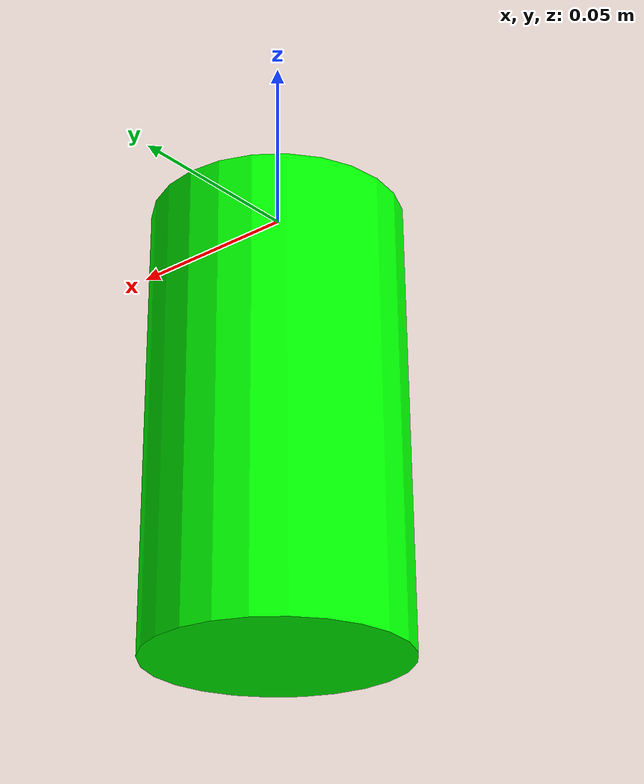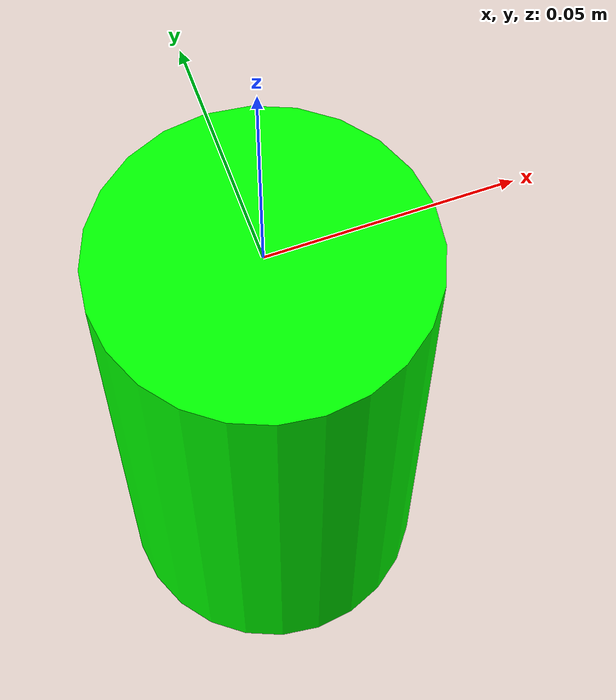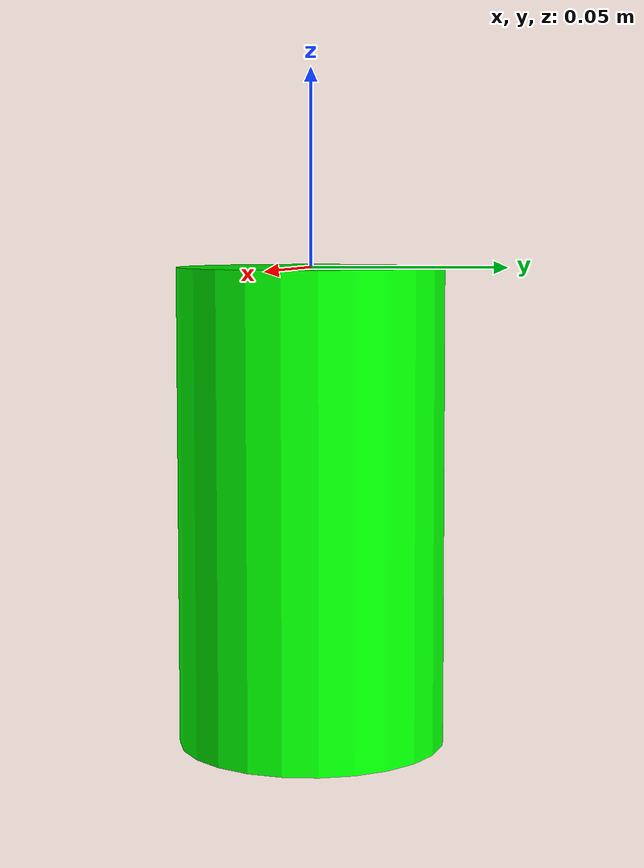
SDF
<?xml version="1.0" ?>
<sdf version="1.4">
  <model name="coke_can">
    <link name="link">
      <inertial>
        <pose>0 0 0 0 0 0</pose>
        <mass>0.02</mass> <!--guess-->
        <inertia>
          <ixx>0.00058</ixx>
          <ixy>0</ixy>
          <ixz>0</ixz>
          <iyy>0.00058</iyy>
          <iyz>0</iyz>
          <izz>0.00019</izz>
        </inertia>
      </inertial>
      <collision name="collision">
        <pose>0 0 -0.061119 0 0 0</pose>
        <geometry>
		  <cylinder>
			<!-- Measured with a tape measure marked in 1/16-in -->
			<radius>0.03413125</radius>
			<length>0.1222375</length>
		  </cylinder>
        </geometry>
        <surface>
          <friction>
            <ode>
              <mu>1.0</mu>
              <mu2>1.0</mu2>
            </ode>
          </friction>
          <contact>
            <ode>
              <kp>10000000.0</kp>
              <kd>1.0</kd>
              <min_depth>0.001</min_depth>
              <max_vel>0.1</max_vel>
            </ode>
          </contact>
        </surface>
      </collision>
      <visual name="visual">
        <pose>0 0 -0.061119 0 0 0</pose>
        <geometry>
		  <cylinder>
			<!-- Measured with a tape measure marked in 1/16-in -->
			<radius>0.03413125</radius>
			<length>0.1222375</length>
		  </cylinder>
        </geometry>
        <material>
          <ambient>0 1 0 1</ambient>
          <diffuse>0 1 0 1</diffuse>
          <specular>0.1 0.1 0.1 1</specular>
          <emissive>0 0 0 0</emissive>
        </material>
      </visual>
    </link>
  </model>
</sdf>
